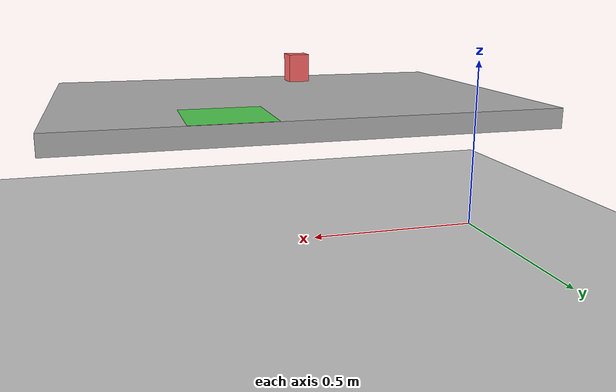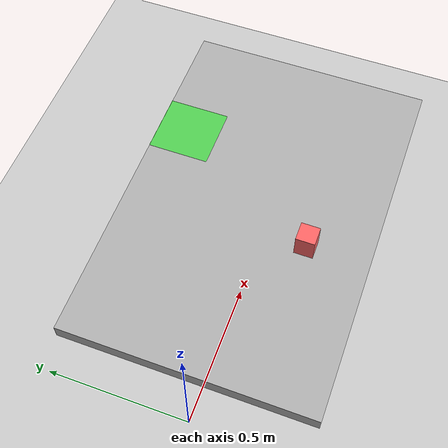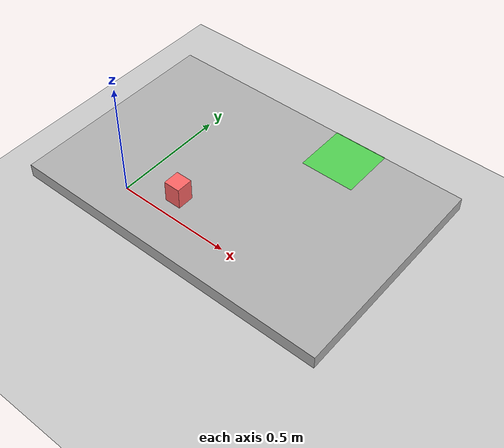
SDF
<?xml version="1.0"?>
<sdf version="1.6">
  <world name="pick_place_training">

    <physics type="ode">
      <max_step_size>0.001</max_step_size>
      <real_time_factor>1.0</real_time_factor>
      <real_time_update_rate>1000.0</real_time_update_rate>
    </physics>

    <light name="sun" type="directional">
      <cast_shadows>true</cast_shadows>
      <pose>0 0 10 0 0 0</pose>
      <diffuse>0.8 0.8 0.8 1</diffuse>
      <specular>0.2 0.2 0.2 1</specular>
      <direction>-0.5 0.1 -0.9</direction>
    </light>

    <include>
      <uri>model://ground_plane</uri>
    </include>

    <!-- Work table -->
    <model name="work_table">
      <static>true</static>
      <pose>0.6 0 0 0 0 0</pose>
      <link name="table_link">
        <collision name="table_top_collision">
          <pose>0 0 0.4 0 0 0</pose>
          <geometry>
            <box><size>1.2 0.8 0.05</size></box>
          </geometry>
        </collision>
        <visual name="table_top_visual">
          <pose>0 0 0.4 0 0 0</pose>
          <geometry>
            <box><size>1.2 0.8 0.05</size></box>
          </geometry>
          <material>
            <ambient>0.7 0.7 0.7 1</ambient>
            <diffuse>0.7 0.7 0.7 1</diffuse>
          </material>
        </visual>
      </link>
    </model>

    <!-- Target object -->
    <model name="target_part">
      <pose>0.5 -0.2 0.475 0 0 0</pose>
      <link name="part_link">
        <inertial>
          <mass>0.2</mass>
          <inertia><ixx>0.0003</ixx><iyy>0.0003</iyy><izz>0.0003</izz></inertia>
        </inertial>
        <collision name="part_collision">
          <geometry>
            <box><size>0.06 0.06 0.08</size></box>
          </geometry>
          <surface>
            <friction><ode><mu>1.0</mu><mu2>1.0</mu2></ode></friction>
          </surface>
        </collision>
        <visual name="part_visual">
          <geometry>
            <box><size>0.06 0.06 0.08</size></box>
          </geometry>
          <material>
            <ambient>1 0.4 0.4 1</ambient>
            <diffuse>1 0.4 0.4 1</diffuse>
          </material>
        </visual>
      </link>
    </model>

    <!-- Target placement area -->
    <model name="target_area">
      <static>true</static>
      <pose>0.8 0.3 0.426 0 0 0</pose>
      <link name="marker_link">
        <visual name="marker_visual">
          <geometry>
            <box><size>0.2 0.2 0.001</size></box>
          </geometry>
          <material>
            <ambient>0 1 0 0.5</ambient>
            <diffuse>0 1 0 0.5</diffuse>
          </material>
        </visual>
      </link>
    </model>

  </world>
</sdf>
